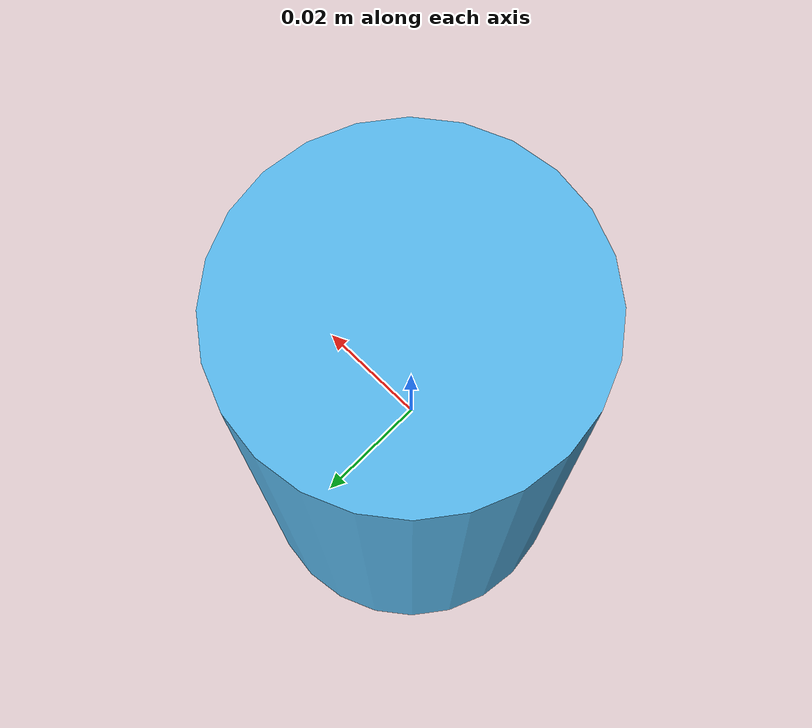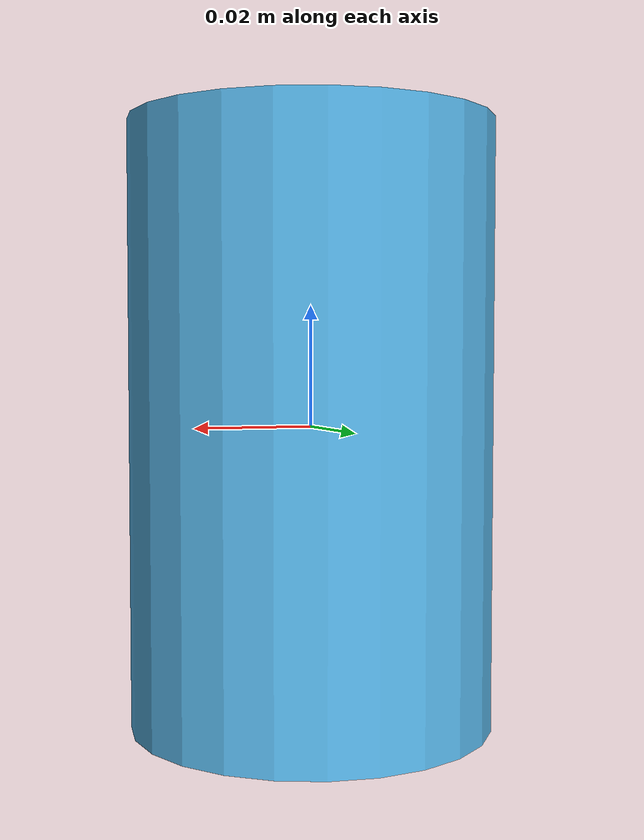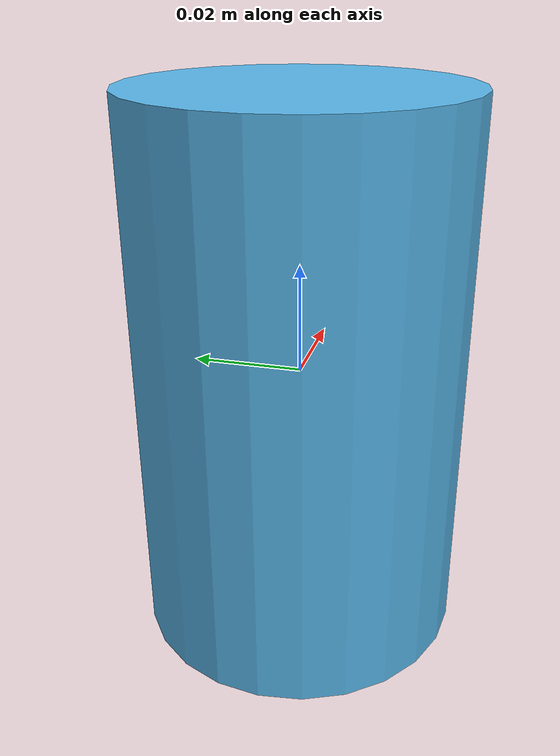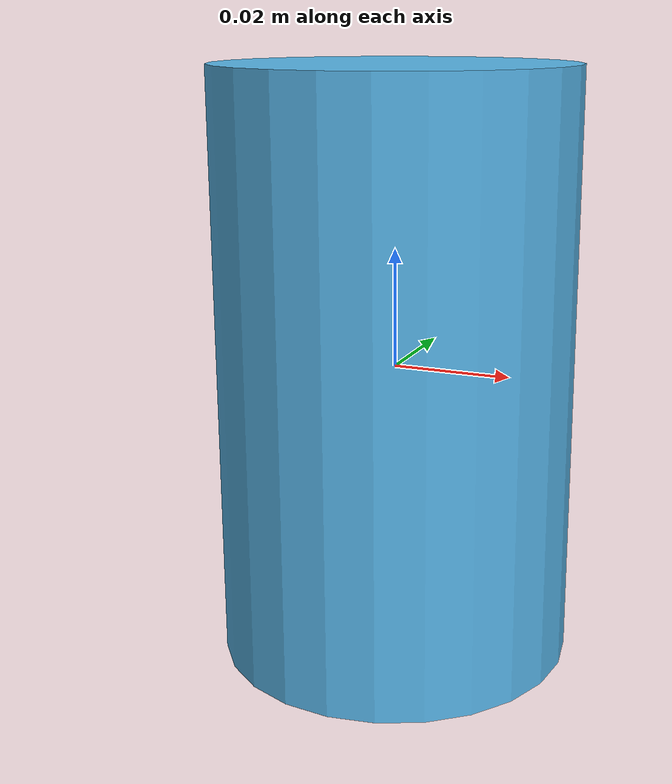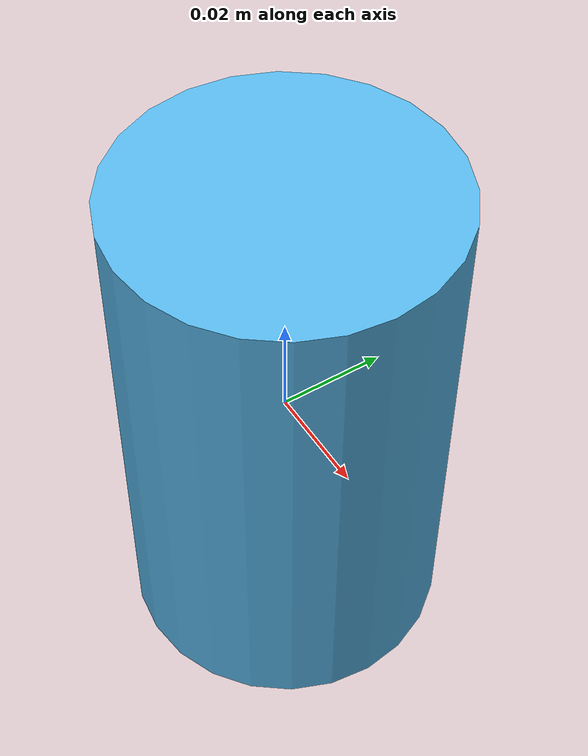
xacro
<?xml version="1.0"?>
<robot name="one_motor" xmlns:xacro="http://www.ros.org/wiki/xacro">

  <xacro:include filename="$(find waveshare_servos)/description/ros2_control/one_motor.ros2_control.xacro"/>

  <link name="base_link"/>

  <link name="link1">
    <visual>
      <geometry>
        <cylinder length="0.1" radius="0.03"/>
      </geometry>
    </visual>
  </link>

  <joint name="joint1" type="revolute">
    <parent link="base_link"/>
    <child link="link1"/>
    <axis xyz="0 0 1"/>
    <limit lower="-3.14" upper="3.14" effort="5" velocity="5"/>
  </joint>

  <xacro:one_st3215_ros2_control name="WaveshareST"/>

</robot>
